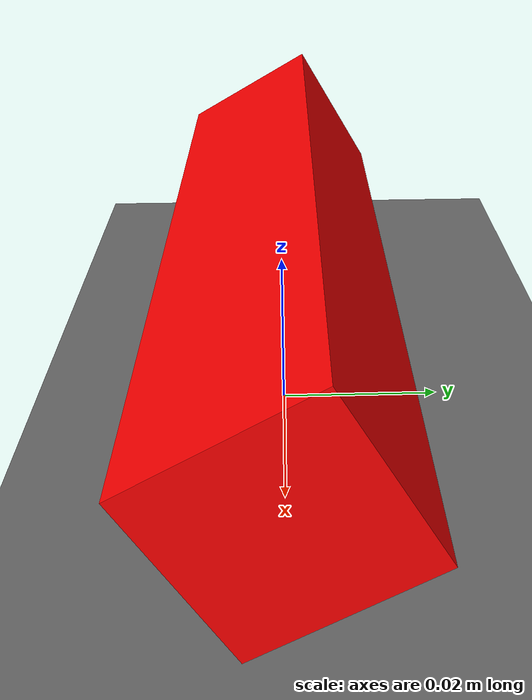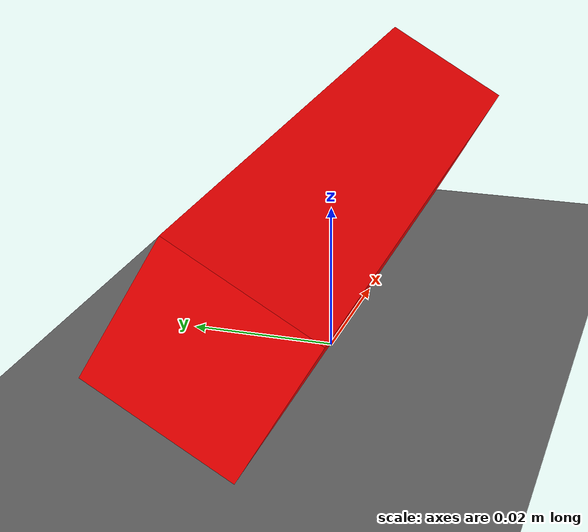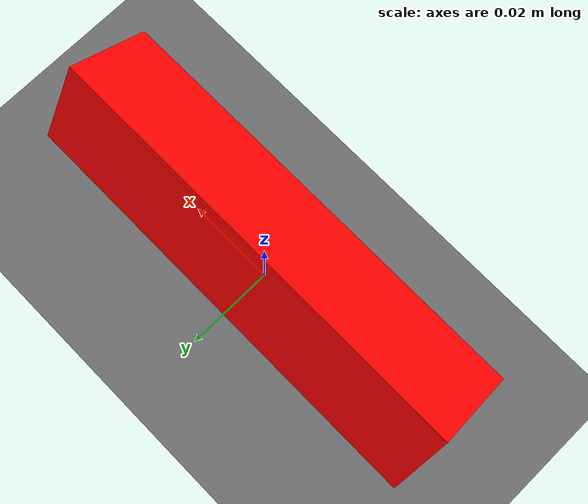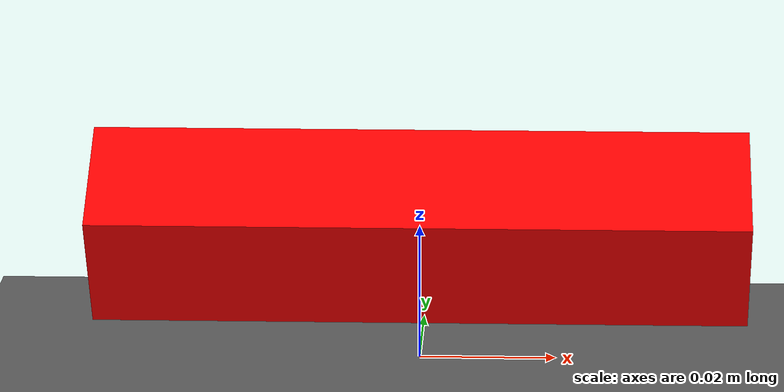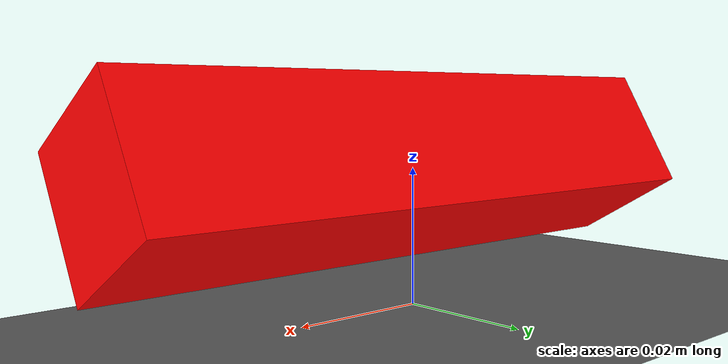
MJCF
<!-- tests a box on a plane with quadratic frictionloss constraints -->
<mujoco>
  <option iterations="10" ls_iterations="6"/>
  <asset>
      <texture builtin="gradient" height="100" rgb1="1 1 1" rgb2="0 0 0" type="skybox" width="100"/>
      <texture builtin="checker" height="100" name="texplane" rgb1="0 0 0" rgb2="0.8 0.8 0.8" type="2d" width="100"/>
      <material name="MatPlane" reflectance="0.5" shininess="1" specular="1" texrepeat="200 200" texture="texplane"/>
  </asset>
  <worldbody>
    <light cutoff="100" diffuse="1 1 1" dir="-0 0 -1.3" directional="true" exponent="1" pos="0 0 1.3" specular=".1 .1 .1"/>
    <geom conaffinity="1" condim="3" material="MatPlane" name="floor" pos="0 0 0" size="40 40 40" type="plane"/>
    <camera pos="-0.323 -4.170 2.949" xyaxes="1.000 -0.024 -0.000 0.010 0.427 0.904"/>
    <body name="peg" pos="0.0 0.0 0.02" euler="30 0 0">
      <joint type="free" stiffness="0" damping="0" frictionloss="0.005" armature="0"/>
      <geom mass="0.044" condim="6" friction="1 0.05 0.001" pos="0 0 0" size="0.048 0.01 0.01" type="box" name="red_peg" rgba="1 0 0 1"/>
    </body>
  </worldbody>
  <keyframe>
    <key name="home" qpos='0.00382621 -0.000816274 0.011149 0.992081 0.0959616 0.00580468 0.08083'/>
  </keyframe>
</mujoco>
